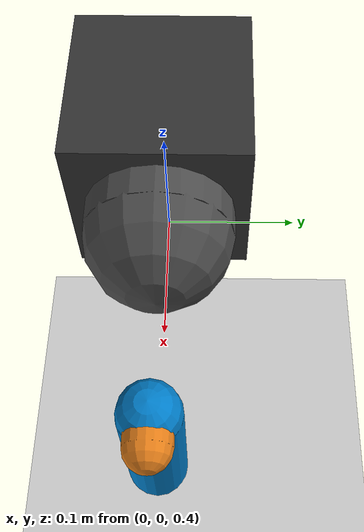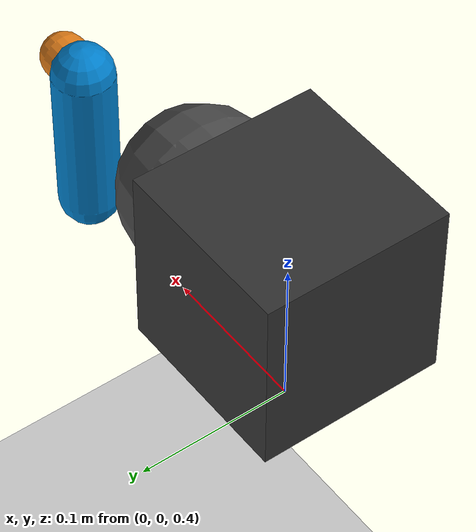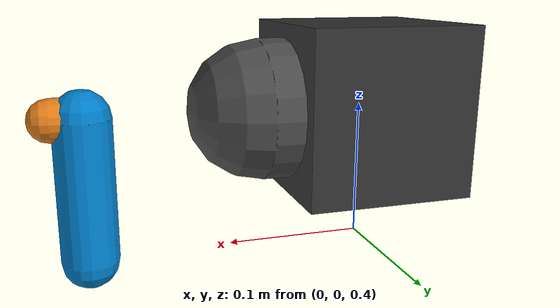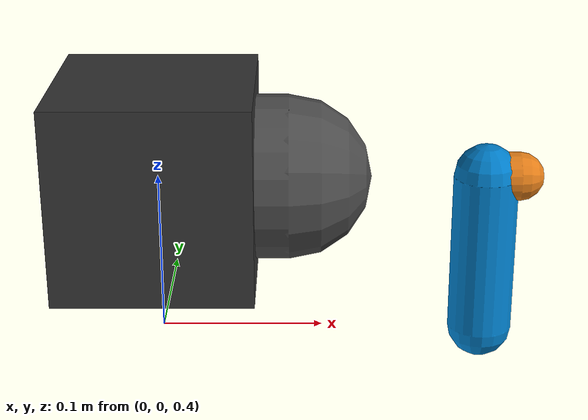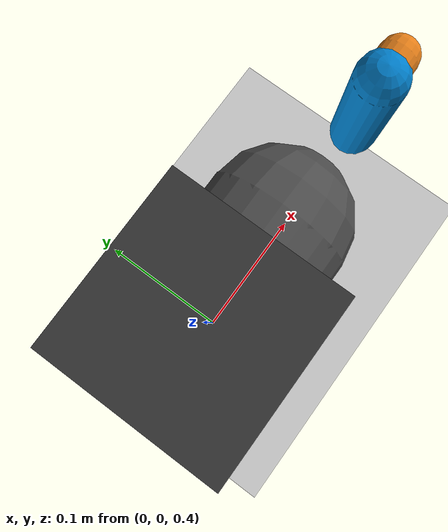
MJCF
<mujoco model="unitree_go_m8010_6_1dof">
  <compiler angle="radian" autolimits="true" inertiafromgeom="true"/>
  <option timestep="0.001" integrator="RK4" gravity="0 0 -9.81">
    <flag contact="enable" energy="enable"/>
  </option>

  <default>
    <!--
       Joint-level dissipations are placeholders and should be fitted from real data.
       Use config.json -> sim.mjcf_override to set global damping/armature overrides in Warp.
    -->
    <!-- frictionloss ~ Coulomb friction torque (Nm). armature ~ added joint inertia (kg*m^2). -->
    <joint damping="0.02" frictionloss="0.05" armature="0.0044814"/>
    <geom type="capsule" size="0.02" rgba="0.7 0.7 0.7 1"/>
  </default>

  <worldbody>
    <geom name="floor" type="plane" size="0 0 0.1" rgba="0.8 0.8 0.8 1"/>

    <!-- 基座 -->
    <body name="base_link" pos="0 0 0.5">
      <geom type="box" size="0.06 0.06 0.06" rgba="0.2 0.2 0.2 1" mass="5.0"/>
      <geom type="capsule" size="0.05" fromto="0 0 0 0.08 0 0" quat="0.707 0 0.707 0" rgba="0.3 0.3 0.3 1" mass="1.0"/>

      <!-- 理想输出轴 -->
        <body name="gearbox_output_shaft" pos="0.2 0 0" euler="0 1.5708 0">
        <!-- Small link inertia placeholder (most inertia is in armature + attached load). -->
        <inertial pos="0 0 0" mass="0.2" diaginertia="0.00005 0.00005 0.00005"/>
        <!--
           Output shaft (what GO-M8010-6 reports as q/dq/tau).
        -->
        <joint name="joint_ideal" type="hinge" axis="0 0 1"
               limited="false"/>

        <geom type="capsule" size="0.015" fromto="0 0 0 0 0 0.02" rgba="0.9 0.5 0.1 1" mass="0.1"/>

        <!-- 实际负载（用于匹配“单关节实物”量级；不引入长摆臂） -->
        <body name="actual_load" pos="0 0 0">
          <!-- Rough inertial placeholder: Izz ~ 0.005 kg*m^2 order -->
          <inertial pos="0.05 0 0" mass="0.3" diaginertia="0.0002 0.0002 0.005"/>
          <geom type="capsule" size="0.02" fromto="0 0 0 0.10 0 0" rgba="0 0.5 0.8 1"/>
        </body>
      </body>
    </body>
  </worldbody>

  <contact>
    <exclude body1="base_link" body2="actual_load"/>
  </contact>

  <actuator>
    <!-- Output-side torque command (Nm): match GO-M8010-6 protocol -->
    <motor name="motor_driver" joint="joint_ideal" gear="1" ctrllimited="true" ctrlrange="-23.7 23.7"/>
  </actuator>
</mujoco>
